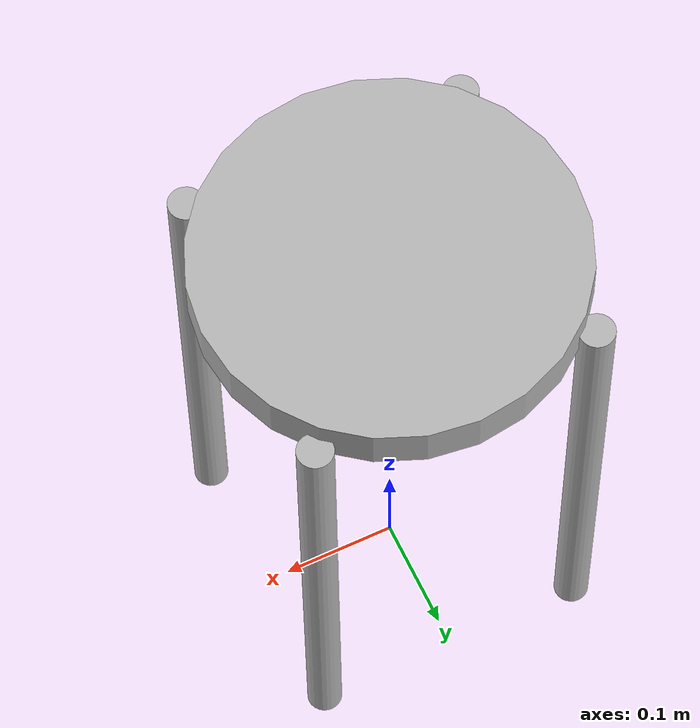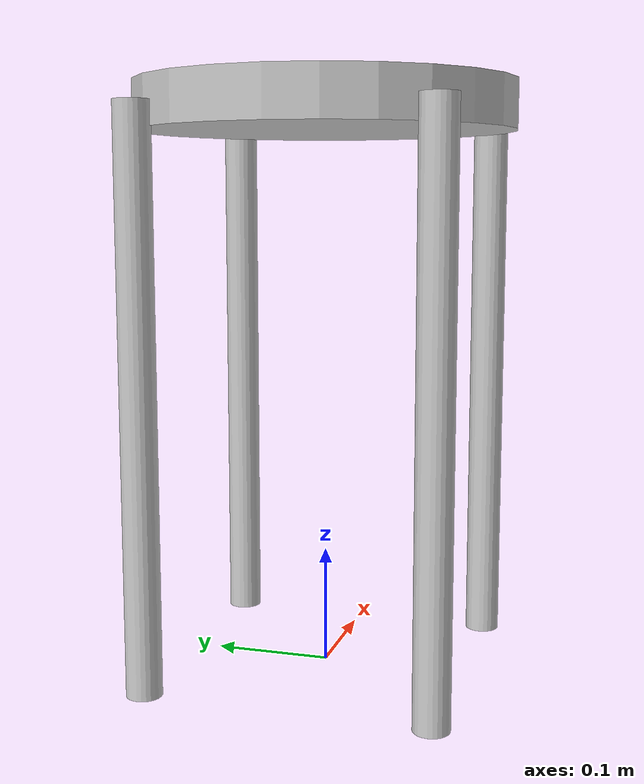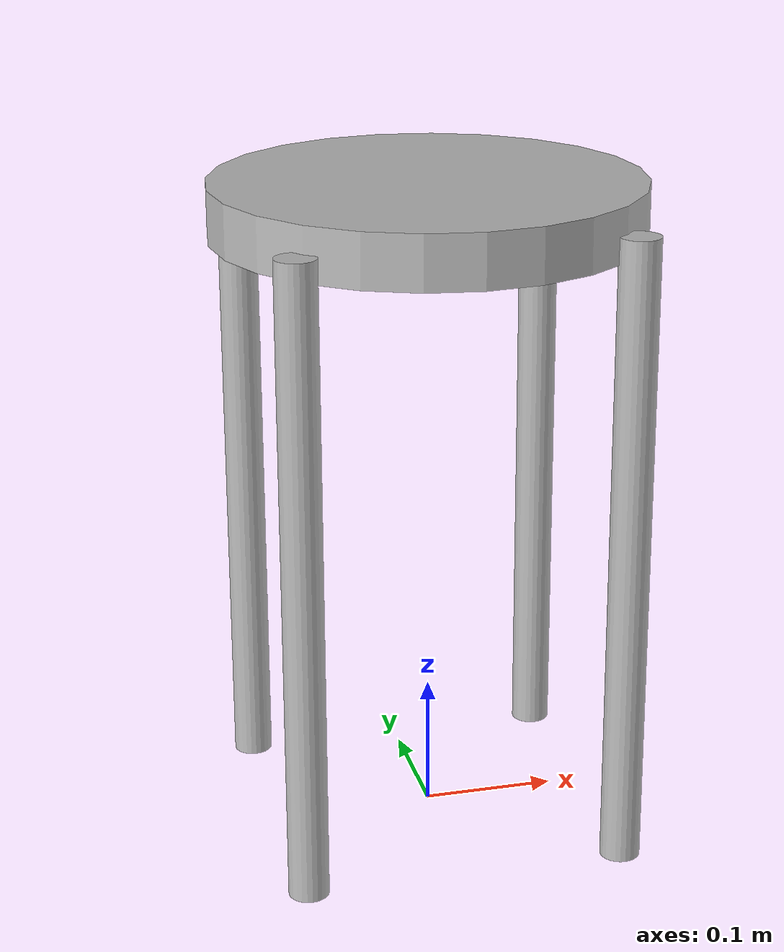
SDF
<?xml version="1.0"?>
<sdf version="1.6">
  <model name="my_stool">
    <static>true</static>

    <link name="stool">
      <!-- 좌판 -->
      <collision name="seat_col">
        <pose>0 0 0.48 0 0 0</pose>
        <geometry><cylinder><radius>0.16</radius><length>0.04</length></cylinder></geometry>
      </collision>
      <visual name="seat_vis">
        <pose>0 0 0.48 0 0 0</pose>
        <geometry><cylinder><radius>0.16</radius><length>0.04</length></cylinder></geometry>
      </visual>

      <!-- 다리 4개 -->
      <!-- leg1 -->
      <collision name="leg1_col">
        <pose> 0.12  0.12 0.24 0 0 0</pose>
        <geometry><cylinder><radius>0.015</radius><length>0.48</length></cylinder></geometry>
      </collision>
      <visual name="leg1_vis">
        <pose> 0.12  0.12 0.24 0 0 0</pose>
        <geometry><cylinder><radius>0.015</radius><length>0.48</length></cylinder></geometry>
      </visual>

      <!-- leg2 -->
      <collision name="leg2_col">
        <pose>-0.12  0.12 0.24 0 0 0</pose>
        <geometry><cylinder><radius>0.015</radius><length>0.48</length></cylinder></geometry>
      </collision>
      <visual name="leg2_vis">
        <pose>-0.12  0.12 0.24 0 0 0</pose>
        <geometry><cylinder><radius>0.015</radius><length>0.48</length></cylinder></geometry>
      </visual>

      <!-- leg3 -->
      <collision name="leg3_col">
        <pose> 0.12 -0.12 0.24 0 0 0</pose>
        <geometry><cylinder><radius>0.015</radius><length>0.48</length></cylinder></geometry>
      </collision>
      <visual name="leg3_vis">
        <pose> 0.12 -0.12 0.24 0 0 0</pose>
        <geometry><cylinder><radius>0.015</radius><length>0.48</length></cylinder></geometry>
      </visual>

      <!-- leg4 -->
      <collision name="leg4_col">
        <pose>-0.12 -0.12 0.24 0 0 0</pose>
        <geometry><cylinder><radius>0.015</radius><length>0.48</length></cylinder></geometry>
      </collision>
      <visual name="leg4_vis">
        <pose>-0.12 -0.12 0.24 0 0 0</pose>
        <geometry><cylinder><radius>0.015</radius><length>0.48</length></cylinder></geometry>
      </visual>
    </link>
  </model>
</sdf>
